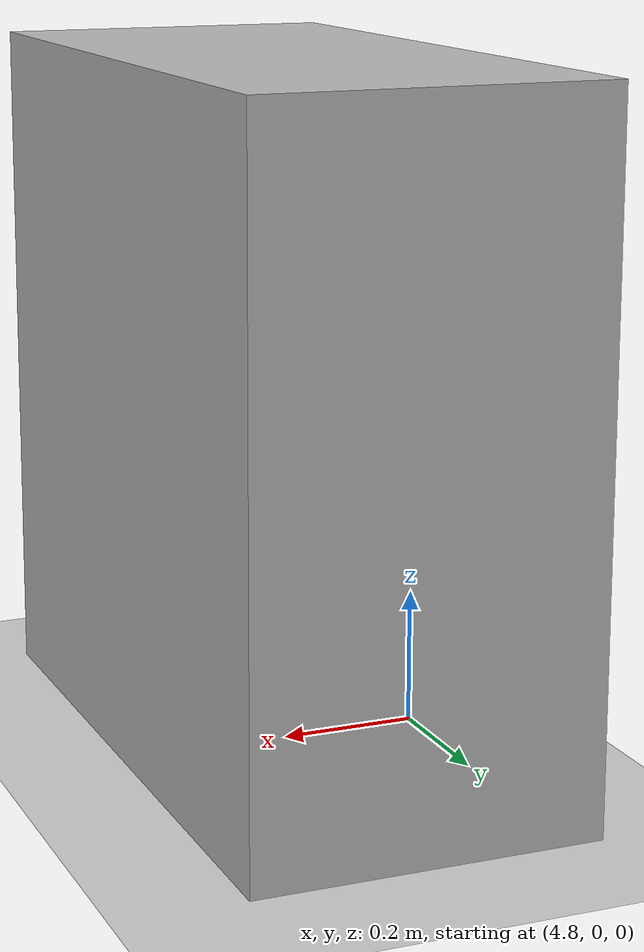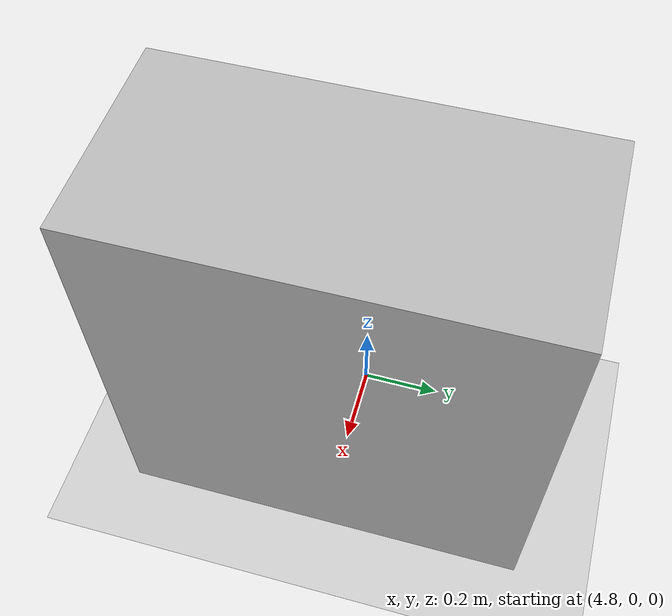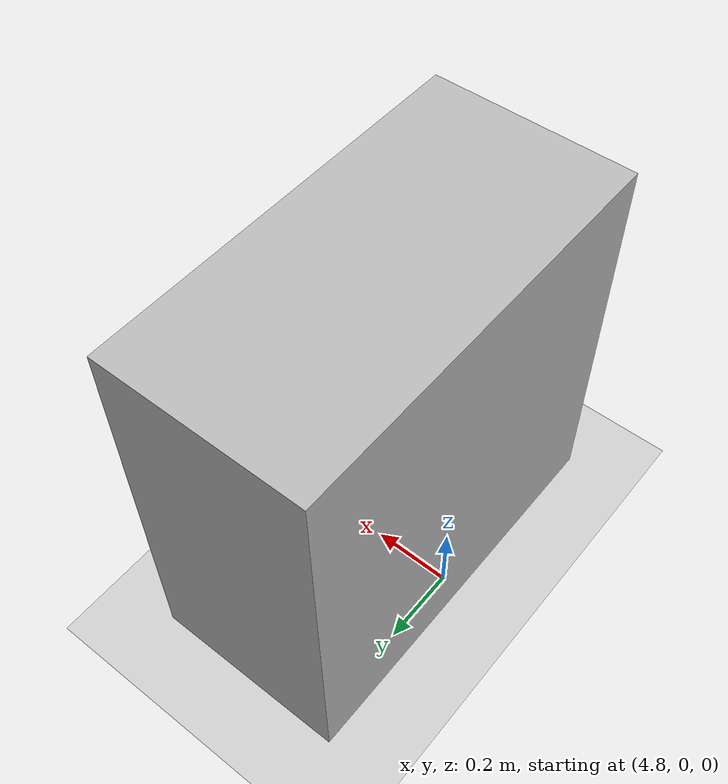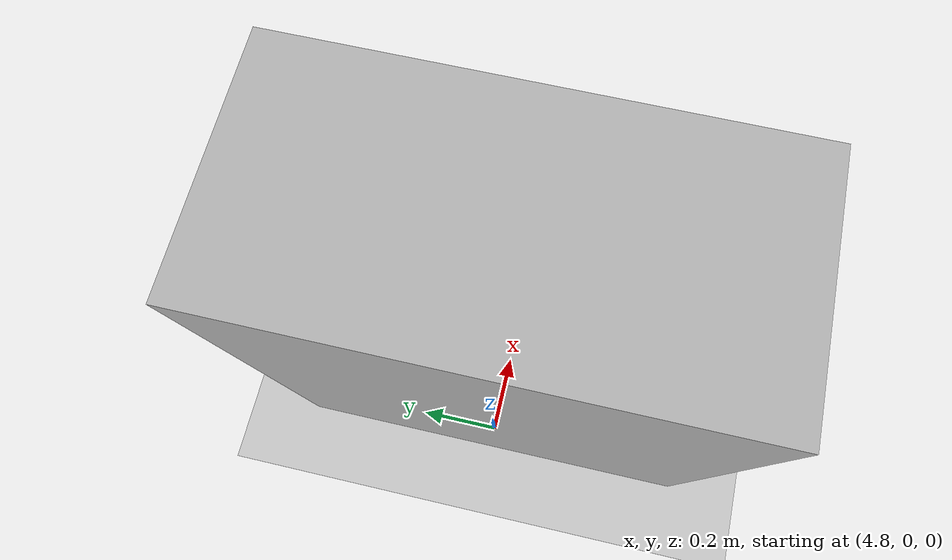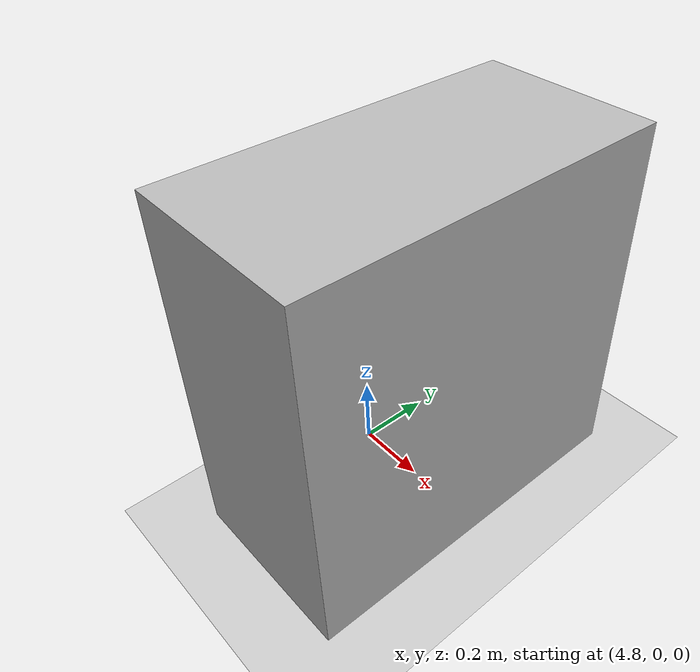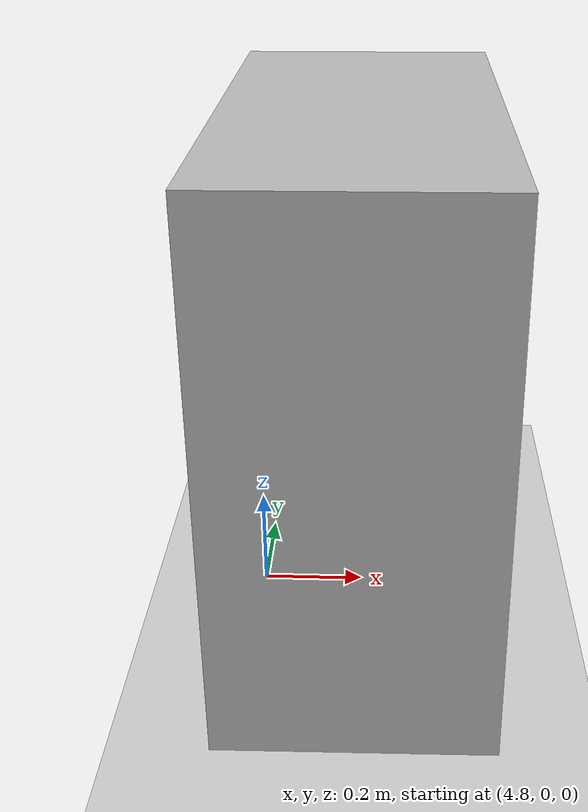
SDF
<?xml version="1.0"?>
<sdf version="1.6">
  <world name="air_ground_v1">
    <include>
      <uri>model://ground_plane</uri>
    </include>
    <include>
      <uri>model://sun</uri>
    </include>

    <!-- Ground Robot starts at x=3.0, so this landmark is about 1.30 m ahead
         of its front-mounted 2D LiDAR. -->
    <model name="ground_scan_obstacle">
      <static>true</static>
      <pose>5.0 0.0 0.5 0 0 0</pose>
      <link name="link">
        <collision name="collision">
          <geometry>
            <box><size>0.5 1.0 1.0</size></box>
          </geometry>
        </collision>
        <visual name="visual">
          <geometry>
            <box><size>0.5 1.0 1.0</size></box>
          </geometry>
        </visual>
      </link>
    </model>
  </world>
</sdf>
